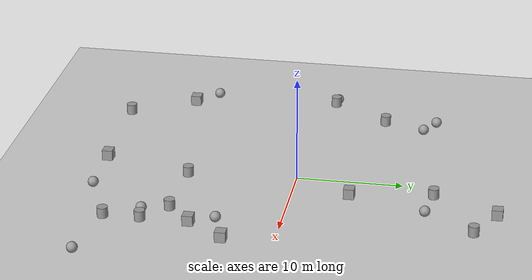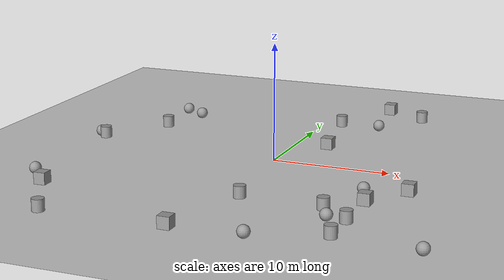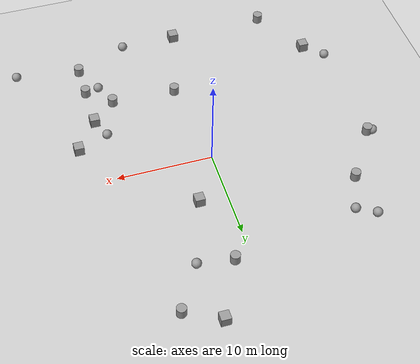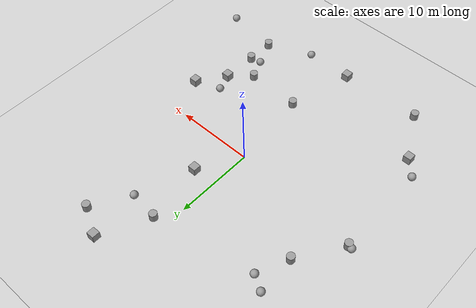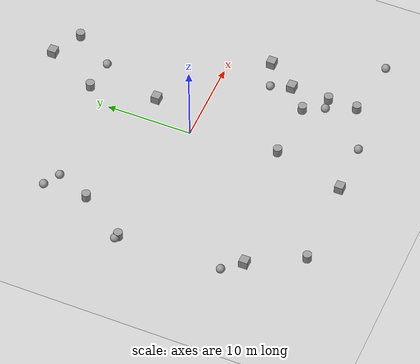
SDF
<?xml version='1.7'?>
<sdf version='1.7'>
  <world name='default'>
    <gravity>0 0 -9.8</gravity>
    <include>
      <uri>model://ground_plane</uri>
    </include>
    <include>
      <uri>model://sun</uri>
    </include>

    <model name='sphere_0'>
      <pose>9.635 -5.808 0.5 0 0 0</pose>
      <static>0</static>
      <link name='link'>
        <inertial><mass>1</mass></inertial>
        <collision name='collision'>
          <geometry><sphere><radius>0.5</radius></sphere></geometry>
        </collision>
        <visual name='visual'>
            <geometry><sphere><radius>0.5</radius></sphere></geometry>
            <material>
                <script>
                <name>Gazebo/Grey</name>
                <uri>file://media/materials/scripts/gazebo.material</uri>
                </script>
            </material>
        </visual>
      </link>
    </model>

    <model name='sphere_1'>
      <pose>5.428 12.591 0.5 0 0 0</pose>
      <static>0</static>
      <link name='link'>
        <inertial><mass>1</mass></inertial>
        <collision name='collision'>
          <geometry><sphere><radius>0.5</radius></sphere></geometry>
        </collision>
        <visual name='visual'>
            <geometry><sphere><radius>0.5</radius></sphere></geometry>
            <material>
                <script>
                <name>Gazebo/Grey</name>
                <uri>file://media/materials/scripts/gazebo.material</uri>
                </script>
            </material>
        </visual>
      </link>
    </model>

    <model name='sphere_2'>
      <pose>4.827 -18.414 0.5 0 0 0</pose>
      <static>0</static>
      <link name='link'>
        <inertial><mass>1</mass></inertial>
        <collision name='collision'>
          <geometry><sphere><radius>0.5</radius></sphere></geometry>
        </collision>
        <visual name='visual'>
            <geometry><sphere><radius>0.5</radius></sphere></geometry>
            <material>
                <script>
                <name>Gazebo/Grey</name>
                <uri>file://media/materials/scripts/gazebo.material</uri>
                </script>
            </material>
        </visual>
      </link>
    </model>

    <model name='box_3'>
      <pose>12.925 -4.635 0.5 0 0 0</pose>
      <static>0</static>
      <link name='link'>
        <inertial><mass>1</mass></inertial>
        <collision name='collision'>
          <geometry><box><size>1 1 1</size></box></geometry>
        </collision>
        <visual name='visual'>
            <geometry><box><size>1 1 1</size></box></geometry>
            <material>
                <script>
                <name>Gazebo/Grey</name>
                <uri>file://media/materials/scripts/gazebo.material</uri>
                </script>
            </material>
        </visual>
      </link>
    </model>

    <model name='box_4'>
      <pose>10.473 -8.11 0.5 0 0 0</pose>
      <static>0</static>
      <link name='link'>
        <inertial><mass>1</mass></inertial>
        <collision name='collision'>
          <geometry><box><size>1 1 1</size></box></geometry>
        </collision>
        <visual name='visual'>
            <geometry><box><size>1 1 1</size></box></geometry>
            <material>
                <script>
                <name>Gazebo/Grey</name>
                <uri>file://media/materials/scripts/gazebo.material</uri>
                </script>
            </material>
        </visual>
      </link>
    </model>

    <model name='box_5'>
      <pose>4.734 19.084 0.5 0 0 0</pose>
      <static>0</static>
      <link name='link'>
        <inertial><mass>1</mass></inertial>
        <collision name='collision'>
          <geometry><box><size>1 1 1</size></box></geometry>
        </collision>
        <visual name='visual'>
            <geometry><box><size>1 1 1</size></box></geometry>
            <material>
                <script>
                <name>Gazebo/Grey</name>
                <uri>file://media/materials/scripts/gazebo.material</uri>
                </script>
            </material>
        </visual>
      </link>
    </model>

    <model name='sphere_6'>
      <pose>-17.205 1.451 0.5 0 0 0</pose>
      <static>0</static>
      <link name='link'>
        <inertial><mass>1</mass></inertial>
        <collision name='collision'>
          <geometry><sphere><radius>0.5</radius></sphere></geometry>
        </collision>
        <visual name='visual'>
            <geometry><sphere><radius>0.5</radius></sphere></geometry>
            <material>
                <script>
                <name>Gazebo/Grey</name>
                <uri>file://media/materials/scripts/gazebo.material</uri>
                </script>
            </material>
        </visual>
      </link>
    </model>

    <model name='sphere_7'>
      <pose>8.974 -12.804 0.5 0 0 0</pose>
      <static>0</static>
      <link name='link'>
        <inertial><mass>1</mass></inertial>
        <collision name='collision'>
          <geometry><sphere><radius>0.5</radius></sphere></geometry>
        </collision>
        <visual name='visual'>
            <geometry><sphere><radius>0.5</radius></sphere></geometry>
            <material>
                <script>
                <name>Gazebo/Grey</name>
                <uri>file://media/materials/scripts/gazebo.material</uri>
                </script>
            </material>
        </visual>
      </link>
    </model>

    <model name='cylinder_8'>
      <pose>8.261 17.23 0.5 0 0 0</pose>
      <static>0</static>
      <link name='link'>
        <inertial><mass>1</mass></inertial>
        <collision name='collision'>
          <geometry><cylinder><radius>0.5</radius><length>1</length></cylinder></geometry>
        </collision>
        <visual name='visual'>
            <geometry><cylinder><radius>0.5</radius><length>1</length></cylinder></geometry>
            <material>
                <script>
                <name>Gazebo/Grey</name>
                <uri>file://media/materials/scripts/gazebo.material</uri>
                </script>
            </material>
        </visual>
      </link>
    </model>

    <model name='sphere_9'>
      <pose>-13.359 11.803 0.5 0 0 0</pose>
      <static>0</static>
      <link name='link'>
        <inertial><mass>1</mass></inertial>
        <collision name='collision'>
          <geometry><sphere><radius>0.5</radius></sphere></geometry>
        </collision>
        <visual name='visual'>
            <geometry><sphere><radius>0.5</radius></sphere></geometry>
            <material>
                <script>
                <name>Gazebo/Grey</name>
                <uri>file://media/materials/scripts/gazebo.material</uri>
                </script>
            </material>
        </visual>
      </link>
    </model>

    <model name='cylinder_10'>
      <pose>10.41 -16.037 0.5 0 0 0</pose>
      <static>0</static>
      <link name='link'>
        <inertial><mass>1</mass></inertial>
        <collision name='collision'>
          <geometry><cylinder><radius>0.5</radius><length>1</length></cylinder></geometry>
        </collision>
        <visual name='visual'>
            <geometry><cylinder><radius>0.5</radius><length>1</length></cylinder></geometry>
            <material>
                <script>
                <name>Gazebo/Grey</name>
                <uri>file://media/materials/scripts/gazebo.material</uri>
                </script>
            </material>
        </visual>
      </link>
    </model>

    <model name='cylinder_11'>
      <pose>7.939 -10.412 0.5 0 0 0</pose>
      <static>0</static>
      <link name='link'>
        <inertial><mass>1</mass></inertial>
        <collision name='collision'>
          <geometry><cylinder><radius>0.5</radius><length>1</length></cylinder></geometry>
        </collision>
        <visual name='visual'>
            <geometry><cylinder><radius>0.5</radius><length>1</length></cylinder></geometry>
            <material>
                <script>
                <name>Gazebo/Grey</name>
                <uri>file://media/materials/scripts/gazebo.material</uri>
                </script>
            </material>
        </visual>
      </link>
    </model>

    <model name='box_12'>
      <pose>2.968 5.356 0.5 0 0 0</pose>
      <static>0</static>
      <link name='link'>
        <inertial><mass>1</mass></inertial>
        <collision name='collision'>
          <geometry><box><size>1 1 1</size></box></geometry>
        </collision>
        <visual name='visual'>
            <geometry><box><size>1 1 1</size></box></geometry>
            <material>
                <script>
                <name>Gazebo/Grey</name>
                <uri>file://media/materials/scripts/gazebo.material</uri>
                </script>
            </material>
        </visual>
      </link>
    </model>

    <model name='sphere_13'>
      <pose>-11.474 10.717 0.5 0 0 0</pose>
      <static>0</static>
      <link name='link'>
        <inertial><mass>1</mass></inertial>
        <collision name='collision'>
          <geometry><sphere><radius>0.5</radius></sphere></geometry>
        </collision>
        <visual name='visual'>
            <geometry><sphere><radius>0.5</radius></sphere></geometry>
            <material>
                <script>
                <name>Gazebo/Grey</name>
                <uri>file://media/materials/scripts/gazebo.material</uri>
                </script>
            </material>
        </visual>
      </link>
    </model>

    <model name='box_14'>
      <pose>-14.768 -12.828 0.5 0 0 0</pose>
      <static>0</static>
      <link name='link'>
        <inertial><mass>1</mass></inertial>
        <collision name='collision'>
          <geometry><box><size>1 1 1</size></box></geometry>
        </collision>
        <visual name='visual'>
            <geometry><box><size>1 1 1</size></box></geometry>
            <material>
                <script>
                <name>Gazebo/Grey</name>
                <uri>file://media/materials/scripts/gazebo.material</uri>
                </script>
            </material>
        </visual>
      </link>
    </model>

    <model name='cylinder_15'>
      <pose>-16.7 1.289 0.5 0 0 0</pose>
      <static>0</static>
      <link name='link'>
        <inertial><mass>1</mass></inertial>
        <collision name='collision'>
          <geometry><cylinder><radius>0.5</radius><length>1</length></cylinder></geometry>
        </collision>
        <visual name='visual'>
            <geometry><cylinder><radius>0.5</radius><length>1</length></cylinder></geometry>
            <material>
                <script>
                <name>Gazebo/Grey</name>
                <uri>file://media/materials/scripts/gazebo.material</uri>
                </script>
            </material>
        </visual>
      </link>
    </model>

    <model name='sphere_16'>
      <pose>17.218 -16.933 0.5 0 0 0</pose>
      <static>0</static>
      <link name='link'>
        <inertial><mass>1</mass></inertial>
        <collision name='collision'>
          <geometry><sphere><radius>0.5</radius></sphere></geometry>
        </collision>
        <visual name='visual'>
            <geometry><sphere><radius>0.5</radius></sphere></geometry>
            <material>
                <script>
                <name>Gazebo/Grey</name>
                <uri>file://media/materials/scripts/gazebo.material</uri>
                </script>
            </material>
        </visual>
      </link>
    </model>

    <model name='sphere_17'>
      <pose>-16.629 -10.808 0.5 0 0 0</pose>
      <static>0</static>
      <link name='link'>
        <inertial><mass>1</mass></inertial>
        <collision name='collision'>
          <geometry><sphere><radius>0.5</radius></sphere></geometry>
        </collision>
        <visual name='visual'>
            <geometry><sphere><radius>0.5</radius></sphere></geometry>
            <material>
                <script>
                <name>Gazebo/Grey</name>
                <uri>file://media/materials/scripts/gazebo.material</uri>
                </script>
            </material>
        </visual>
      </link>
    </model>

    <model name='cylinder_18'>
      <pose>-13.113 6.764 0.5 0 0 0</pose>
      <static>0</static>
      <link name='link'>
        <inertial><mass>1</mass></inertial>
        <collision name='collision'>
          <geometry><cylinder><radius>0.5</radius><length>1</length></cylinder></geometry>
        </collision>
        <visual name='visual'>
            <geometry><cylinder><radius>0.5</radius><length>1</length></cylinder></geometry>
            <material>
                <script>
                <name>Gazebo/Grey</name>
                <uri>file://media/materials/scripts/gazebo.material</uri>
                </script>
            </material>
        </visual>
      </link>
    </model>

    <model name='cylinder_19'>
      <pose>-11.472 -18.82 0.5 0 0 0</pose>
      <static>0</static>
      <link name='link'>
        <inertial><mass>1</mass></inertial>
        <collision name='collision'>
          <geometry><cylinder><radius>0.5</radius><length>1</length></cylinder></geometry>
        </collision>
        <visual name='visual'>
            <geometry><cylinder><radius>0.5</radius><length>1</length></cylinder></geometry>
            <material>
                <script>
                <name>Gazebo/Grey</name>
                <uri>file://media/materials/scripts/gazebo.material</uri>
                </script>
            </material>
        </visual>
      </link>
    </model>

    <model name='cylinder_20'>
      <pose>10.428 -12.59 0.5 0 0 0</pose>
      <static>0</static>
      <link name='link'>
        <inertial><mass>1</mass></inertial>
        <collision name='collision'>
          <geometry><cylinder><radius>0.5</radius><length>1</length></cylinder></geometry>
        </collision>
        <visual name='visual'>
            <geometry><cylinder><radius>0.5</radius><length>1</length></cylinder></geometry>
            <material>
                <script>
                <name>Gazebo/Grey</name>
                <uri>file://media/materials/scripts/gazebo.material</uri>
                </script>
            </material>
        </visual>
      </link>
    </model>

    <model name='box_21'>
      <pose>-1.1 -18.525 0.5 0 0 0</pose>
      <static>0</static>
      <link name='link'>
        <inertial><mass>1</mass></inertial>
        <collision name='collision'>
          <geometry><box><size>1 1 1</size></box></geometry>
        </collision>
        <visual name='visual'>
            <geometry><box><size>1 1 1</size></box></geometry>
            <material>
                <script>
                <name>Gazebo/Grey</name>
                <uri>file://media/materials/scripts/gazebo.material</uri>
                </script>
            </material>
        </visual>
      </link>
    </model>

    <model name='cylinder_22'>
      <pose>1.095 -10.193 0.5 0 0 0</pose>
      <static>0</static>
      <link name='link'>
        <inertial><mass>1</mass></inertial>
        <collision name='collision'>
          <geometry><cylinder><radius>0.5</radius><length>1</length></cylinder></geometry>
        </collision>
        <visual name='visual'>
            <geometry><cylinder><radius>0.5</radius><length>1</length></cylinder></geometry>
            <material>
                <script>
                <name>Gazebo/Grey</name>
                <uri>file://media/materials/scripts/gazebo.material</uri>
                </script>
            </material>
        </visual>
      </link>
    </model>

    <model name='cylinder_23'>
      <pose>1.742 13.027 0.5 0 0 0</pose>
      <static>0</static>
      <link name='link'>
        <inertial><mass>1</mass></inertial>
        <collision name='collision'>
          <geometry><cylinder><radius>0.5</radius><length>1</length></cylinder></geometry>
        </collision>
        <visual name='visual'>
            <geometry><cylinder><radius>0.5</radius><length>1</length></cylinder></geometry>
            <material>
                <script>
                <name>Gazebo/Grey</name>
                <uri>file://media/materials/scripts/gazebo.material</uri>
                </script>
            </material>
        </visual>
      </link>
    </model>

  </world>
</sdf>
